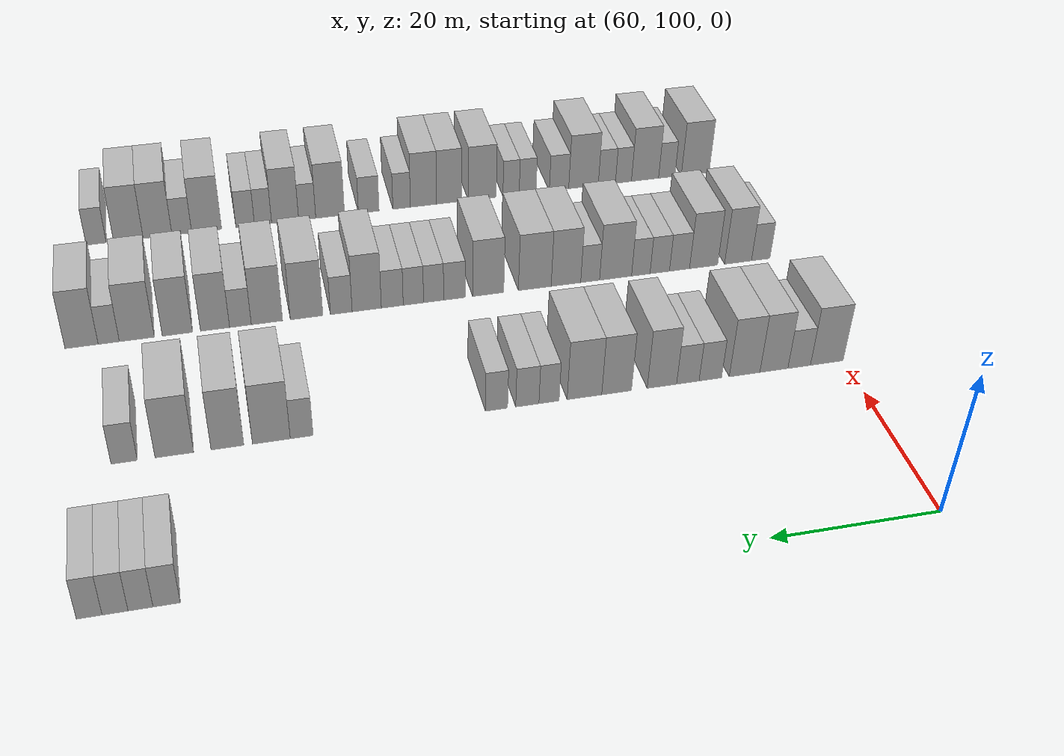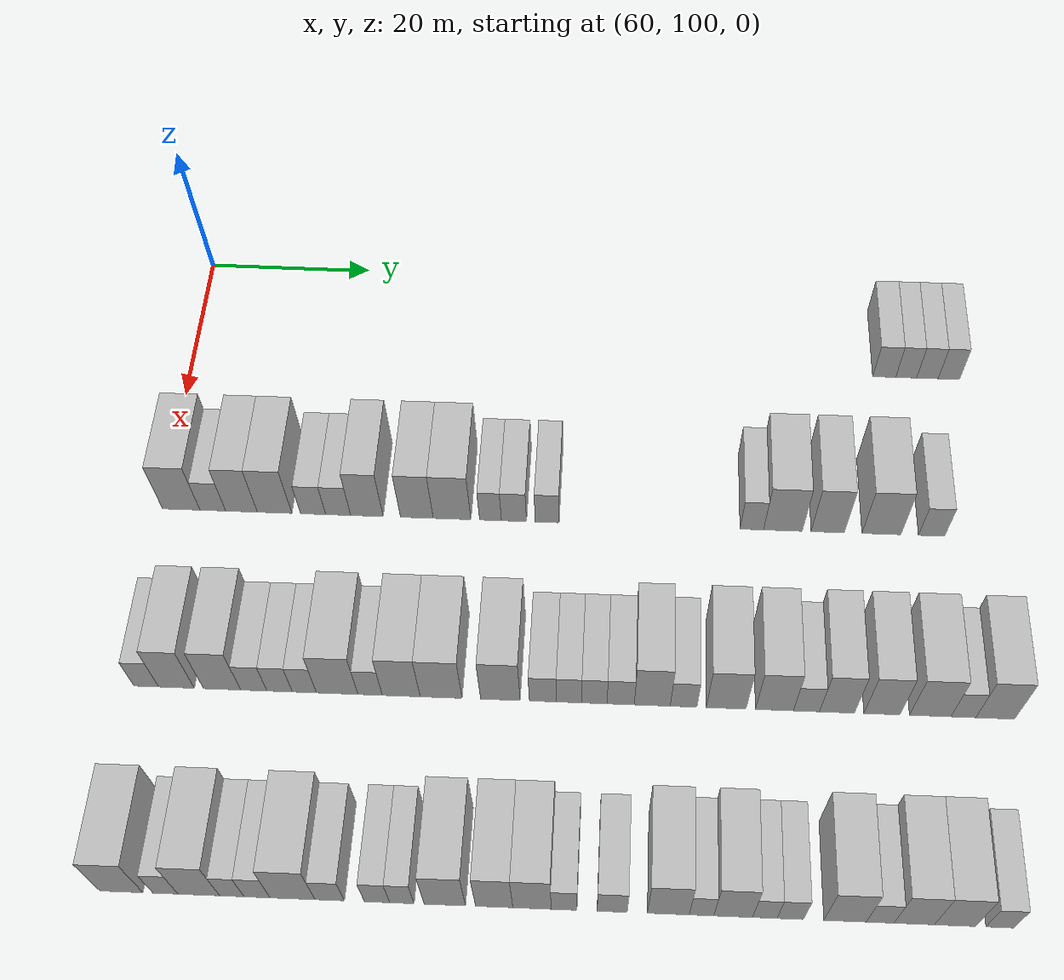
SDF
<sdf version="1.6">
 <world name="default">
  <model name="building_513">
   <static>1</static>
   <pose>69.0000 184.5272 0 0.000000 0.000000 0.000000</pose>
   <link name="link">
    <pose>0 0 3.00 0 0 0</pose>
    <collision name="collision"><geometry><box><size>10.0000 2.7876 6.0000</size></box></geometry></collision>
    <visual name="visual">
     <cast_shadows>0</cast_shadows>
     <geometry><box><size>10.0000 2.7876 6.0000</size></box></geometry>
     <material>
      <script>
       <uri>model://HANNAS_wall/materials/scripts</uri>
       <uri>model://HANNAS_wall/materials/textures</uri>
       <name>vrc/HANNAS_wall</name>
      </script>
     </material>
    </visual>
   </link>
  </model>
  <model name="building_514">
   <static>1</static>
   <pose>69.0000 187.1919 0 0.000000 0.000000 0.000000</pose>
   <link name="link">
    <pose>0 0 3.00 0 0 0</pose>
    <collision name="collision"><geometry><box><size>10.0000 2.5418 6.0000</size></box></geometry></collision>
    <visual name="visual">
     <cast_shadows>0</cast_shadows>
     <geometry><box><size>10.0000 2.5418 6.0000</size></box></geometry>
     <material>
      <script>
       <uri>model://HANNAS_wall/materials/scripts</uri>
       <uri>model://HANNAS_wall/materials/textures</uri>
       <name>vrc/HANNAS_wall</name>
      </script>
     </material>
    </visual>
   </link>
  </model>
  <model name="building_515">
   <static>1</static>
   <pose>69.0000 189.7736 0 0.000000 0.000000 0.000000</pose>
   <link name="link">
    <pose>0 0 3.00 0 0 0</pose>
    <collision name="collision"><geometry><box><size>10.0000 2.6215 6.0000</size></box></geometry></collision>
    <visual name="visual">
     <cast_shadows>0</cast_shadows>
     <geometry><box><size>10.0000 2.6215 6.0000</size></box></geometry>
     <material>
      <script>
       <uri>model://HANNAS_wall/materials/scripts</uri>
       <uri>model://HANNAS_wall/materials/textures</uri>
       <name>vrc/HANNAS_wall</name>
      </script>
     </material>
    </visual>
   </link>
  </model>
  <model name="building_516">
   <static>1</static>
   <pose>69.0000 192.3810 0 0.000000 0.000000 0.000000</pose>
   <link name="link">
    <pose>0 0 3.00 0 0 0</pose>
    <collision name="collision"><geometry><box><size>10.0000 2.5934 6.0000</size></box></geometry></collision>
    <visual name="visual">
     <cast_shadows>0</cast_shadows>
     <geometry><box><size>10.0000 2.5934 6.0000</size></box></geometry>
     <material>
      <script>
       <uri>model://HANNAS_wall/materials/scripts</uri>
       <uri>model://HANNAS_wall/materials/textures</uri>
       <name>vrc/HANNAS_wall</name>
      </script>
     </material>
    </visual>
   </link>
  </model>
  <model name="building_680">
   <static>1</static>
   <pose>91.0000 102.3181 0 0.000000 0.000000 0.000000</pose>
   <link name="link">
    <pose>0 0 4.50 0 0 0</pose>
    <collision name="collision"><geometry><box><size>10.0000 4.3328 9.0000</size></box></geometry></collision>
    <visual name="visual">
     <cast_shadows>0</cast_shadows>
     <geometry><box><size>10.0000 4.3328 9.0000</size></box></geometry>
     <material>
      <script>
       <uri>model://HANNAS_wall/materials/scripts</uri>
       <uri>model://HANNAS_wall/materials/textures</uri>
       <name>vrc/HANNAS_wall</name>
      </script>
     </material>
    </visual>
   </link>
  </model>
  <model name="building_681">
   <static>1</static>
   <pose>91.0000 105.9725 0 0.000000 0.000000 0.000000</pose>
   <link name="link">
    <pose>0 0 3.00 0 0 0</pose>
    <collision name="collision"><geometry><box><size>10.0000 2.9761 6.0000</size></box></geometry></collision>
    <visual name="visual">
     <cast_shadows>0</cast_shadows>
     <geometry><box><size>10.0000 2.9761 6.0000</size></box></geometry>
     <material>
      <script>
       <uri>model://HANNAS_wall/materials/scripts</uri>
       <uri>model://HANNAS_wall/materials/textures</uri>
       <name>vrc/HANNAS_wall</name>
      </script>
     </material>
    </visual>
   </link>
  </model>
  <model name="building_682">
   <static>1</static>
   <pose>91.0000 109.2943 0 0.000000 0.000000 0.000000</pose>
   <link name="link">
    <pose>0 0 4.50 0 0 0</pose>
    <collision name="collision"><geometry><box><size>10.0000 3.6674 9.0000</size></box></geometry></collision>
    <visual name="visual">
     <cast_shadows>0</cast_shadows>
     <geometry><box><size>10.0000 3.6674 9.0000</size></box></geometry>
     <material>
      <script>
       <uri>model://HANNAS_wall/materials/scripts</uri>
       <uri>model://HANNAS_wall/materials/textures</uri>
       <name>vrc/HANNAS_wall</name>
      </script>
     </material>
    </visual>
   </link>
  </model>
  <model name="building_683">
   <static>1</static>
   <pose>91.0000 113.1238 0 0.000000 0.000000 0.000000</pose>
   <link name="link">
    <pose>0 0 4.50 0 0 0</pose>
    <collision name="collision"><geometry><box><size>10.0000 3.9918 9.0000</size></box></geometry></collision>
    <visual name="visual">
     <cast_shadows>0</cast_shadows>
     <geometry><box><size>10.0000 3.9918 9.0000</size></box></geometry>
     <material>
      <script>
       <uri>model://HANNAS_wall/materials/scripts</uri>
       <uri>model://HANNAS_wall/materials/textures</uri>
       <name>vrc/HANNAS_wall</name>
      </script>
     </material>
    </visual>
   </link>
  </model>
  <model name="building_684">
   <static>1</static>
   <pose>91.0000 117.5703 0 0.000000 0.000000 0.000000</pose>
   <link name="link">
    <pose>0 0 3.00 0 0 0</pose>
    <collision name="collision"><geometry><box><size>10.0000 2.9012 6.0000</size></box></geometry></collision>
    <visual name="visual">
     <cast_shadows>0</cast_shadows>
     <geometry><box><size>10.0000 2.9012 6.0000</size></box></geometry>
     <material>
      <script>
       <uri>model://HANNAS_wall/materials/scripts</uri>
       <uri>model://HANNAS_wall/materials/textures</uri>
       <name>vrc/HANNAS_wall</name>
      </script>
     </material>
    </visual>
   </link>
  </model>
  <model name="building_685">
   <static>1</static>
   <pose>91.0000 120.4655 0 0.000000 0.000000 0.000000</pose>
   <link name="link">
    <pose>0 0 3.00 0 0 0</pose>
    <collision name="collision"><geometry><box><size>10.0000 2.8893 6.0000</size></box></geometry></collision>
    <visual name="visual">
     <cast_shadows>0</cast_shadows>
     <geometry><box><size>10.0000 2.8893 6.0000</size></box></geometry>
     <material>
      <script>
       <uri>model://HANNAS_wall/materials/scripts</uri>
       <uri>model://HANNAS_wall/materials/textures</uri>
       <name>vrc/HANNAS_wall</name>
      </script>
     </material>
    </visual>
   </link>
  </model>
  <model name="building_686">
   <static>1</static>
   <pose>91.0000 123.7858 0 0.000000 0.000000 0.000000</pose>
   <link name="link">
    <pose>0 0 4.50 0 0 0</pose>
    <collision name="collision"><geometry><box><size>10.0000 3.7511 9.0000</size></box></geometry></collision>
    <visual name="visual">
     <cast_shadows>0</cast_shadows>
     <geometry><box><size>10.0000 3.7511 9.0000</size></box></geometry>
     <material>
      <script>
       <uri>model://HANNAS_wall/materials/scripts</uri>
       <uri>model://HANNAS_wall/materials/textures</uri>
       <name>vrc/HANNAS_wall</name>
      </script>
     </material>
    </visual>
   </link>
  </model>
  <model name="building_687">
   <static>1</static>
   <pose>91.0000 129.5402 0 0.000000 0.000000 0.000000</pose>
   <link name="link">
    <pose>0 0 4.50 0 0 0</pose>
    <collision name="collision"><geometry><box><size>10.0000 3.7578 9.0000</size></box></geometry></collision>
    <visual name="visual">
     <cast_shadows>0</cast_shadows>
     <geometry><box><size>10.0000 3.7578 9.0000</size></box></geometry>
     <material>
      <script>
       <uri>model://HANNAS_wall/materials/scripts</uri>
       <uri>model://HANNAS_wall/materials/textures</uri>
       <name>vrc/HANNAS_wall</name>
      </script>
     </material>
    </visual>
   </link>
  </model>
  <model name="building_688">
   <static>1</static>
   <pose>91.0000 133.5899 0 0.000000 0.000000 0.000000</pose>
   <link name="link">
    <pose>0 0 4.50 0 0 0</pose>
    <collision name="collision"><geometry><box><size>10.0000 4.3416 9.0000</size></box></geometry></collision>
    <visual name="visual">
     <cast_shadows>0</cast_shadows>
     <geometry><box><size>10.0000 4.3416 9.0000</size></box></geometry>
     <material>
      <script>
       <uri>model://HANNAS_wall/materials/scripts</uri>
       <uri>model://HANNAS_wall/materials/textures</uri>
       <name>vrc/HANNAS_wall</name>
      </script>
     </material>
    </visual>
   </link>
  </model>
  <model name="building_689">
   <static>1</static>
   <pose>91.0000 138.0135 0 0.000000 0.000000 0.000000</pose>
   <link name="link">
    <pose>0 0 3.00 0 0 0</pose>
    <collision name="collision"><geometry><box><size>10.0000 2.5056 6.0000</size></box></geometry></collision>
    <visual name="visual">
     <cast_shadows>0</cast_shadows>
     <geometry><box><size>10.0000 2.5056 6.0000</size></box></geometry>
     <material>
      <script>
       <uri>model://HANNAS_wall/materials/scripts</uri>
       <uri>model://HANNAS_wall/materials/textures</uri>
       <name>vrc/HANNAS_wall</name>
      </script>
     </material>
    </visual>
   </link>
  </model>
  <model name="building_690">
   <static>1</static>
   <pose>91.0000 140.7064 0 0.000000 0.000000 0.000000</pose>
   <link name="link">
    <pose>0 0 3.00 0 0 0</pose>
    <collision name="collision"><geometry><box><size>10.0000 2.8801 6.0000</size></box></geometry></collision>
    <visual name="visual">
     <cast_shadows>0</cast_shadows>
     <geometry><box><size>10.0000 2.8801 6.0000</size></box></geometry>
     <material>
      <script>
       <uri>model://HANNAS_wall/materials/scripts</uri>
       <uri>model://HANNAS_wall/materials/textures</uri>
       <name>vrc/HANNAS_wall</name>
      </script>
     </material>
    </visual>
   </link>
  </model>
  <model name="building_691">
   <static>1</static>
   <pose>91.0000 144.5167 0 0.000000 0.000000 0.000000</pose>
   <link name="link">
    <pose>0 0 3.00 0 0 0</pose>
    <collision name="collision"><geometry><box><size>10.0000 2.7405 6.0000</size></box></geometry></collision>
    <visual name="visual">
     <cast_shadows>0</cast_shadows>
     <geometry><box><size>10.0000 2.7405 6.0000</size></box></geometry>
     <material>
      <script>
       <uri>model://HANNAS_wall/materials/scripts</uri>
       <uri>model://HANNAS_wall/materials/textures</uri>
       <name>vrc/HANNAS_wall</name>
      </script>
     </material>
    </visual>
   </link>
  </model>
  <model name="building_692">
   <static>1</static>
   <pose>91.0000 167.9184 0 0.000000 0.000000 0.000000</pose>
   <link name="link">
    <pose>0 0 3.00 0 0 0</pose>
    <collision name="collision"><geometry><box><size>10.0000 2.6877 6.0000</size></box></geometry></collision>
    <visual name="visual">
     <cast_shadows>0</cast_shadows>
     <geometry><box><size>10.0000 2.6877 6.0000</size></box></geometry>
     <material>
      <script>
       <uri>model://HANNAS_wall/materials/scripts</uri>
       <uri>model://HANNAS_wall/materials/textures</uri>
       <name>vrc/HANNAS_wall</name>
      </script>
     </material>
    </visual>
   </link>
  </model>
  <model name="building_693">
   <static>1</static>
   <pose>91.0000 171.4706 0 0.000000 0.000000 0.000000</pose>
   <link name="link">
    <pose>0 0 4.50 0 0 0</pose>
    <collision name="collision"><geometry><box><size>10.0000 4.4167 9.0000</size></box></geometry></collision>
    <visual name="visual">
     <cast_shadows>0</cast_shadows>
     <geometry><box><size>10.0000 4.4167 9.0000</size></box></geometry>
     <material>
      <script>
       <uri>model://HANNAS_wall/materials/scripts</uri>
       <uri>model://HANNAS_wall/materials/textures</uri>
       <name>vrc/HANNAS_wall</name>
      </script>
     </material>
    </visual>
   </link>
  </model>
  <model name="building_694">
   <static>1</static>
   <pose>91.0000 176.5769 0 0.000000 0.000000 0.000000</pose>
   <link name="link">
    <pose>0 0 4.50 0 0 0</pose>
    <collision name="collision"><geometry><box><size>10.0000 3.7958 9.0000</size></box></geometry></collision>
    <visual name="visual">
     <cast_shadows>0</cast_shadows>
     <geometry><box><size>10.0000 3.7958 9.0000</size></box></geometry>
     <material>
      <script>
       <uri>model://HANNAS_wall/materials/scripts</uri>
       <uri>model://HANNAS_wall/materials/textures</uri>
       <name>vrc/HANNAS_wall</name>
      </script>
     </material>
    </visual>
   </link>
  </model>
  <model name="building_695">
   <static>1</static>
   <pose>91.0000 182.6849 0 0.000000 0.000000 0.000000</pose>
   <link name="link">
    <pose>0 0 4.50 0 0 0</pose>
    <collision name="collision"><geometry><box><size>10.0000 4.4202 9.0000</size></box></geometry></collision>
    <visual name="visual">
     <cast_shadows>0</cast_shadows>
     <geometry><box><size>10.0000 4.4202 9.0000</size></box></geometry>
     <material>
      <script>
       <uri>model://HANNAS_wall/materials/scripts</uri>
       <uri>model://HANNAS_wall/materials/textures</uri>
       <name>vrc/HANNAS_wall</name>
      </script>
     </material>
    </visual>
   </link>
  </model>
  <model name="building_696">
   <static>1</static>
   <pose>91.0000 188.3859 0 0.000000 0.000000 0.000000</pose>
   <link name="link">
    <pose>0 0 3.00 0 0 0</pose>
    <collision name="collision"><geometry><box><size>10.0000 2.9819 6.0000</size></box></geometry></collision>
    <visual name="visual">
     <cast_shadows>0</cast_shadows>
     <geometry><box><size>10.0000 2.9819 6.0000</size></box></geometry>
     <material>
      <script>
       <uri>model://HANNAS_wall/materials/scripts</uri>
       <uri>model://HANNAS_wall/materials/textures</uri>
       <name>vrc/HANNAS_wall</name>
      </script>
     </material>
    </visual>
   </link>
  </model>
  <model name="building_853">
   <static>1</static>
   <pose>113.0000 102.5112 0 0.000000 0.000000 0.000000</pose>
   <link name="link">
    <pose>0 0 3.00 0 0 0</pose>
    <collision name="collision"><geometry><box><size>10.0000 2.6646 6.0000</size></box></geometry></collision>
    <visual name="visual">
     <cast_shadows>0</cast_shadows>
     <geometry><box><size>10.0000 2.6646 6.0000</size></box></geometry>
     <material>
      <script>
       <uri>model://HANNAS_wall/materials/scripts</uri>
       <uri>model://HANNAS_wall/materials/textures</uri>
       <name>vrc/HANNAS_wall</name>
      </script>
     </material>
    </visual>
   </link>
  </model>
  <model name="building_854">
   <static>1</static>
   <pose>113.0000 105.7718 0 0.000000 0.000000 0.000000</pose>
   <link name="link">
    <pose>0 0 4.50 0 0 0</pose>
    <collision name="collision"><geometry><box><size>10.0000 3.8566 9.0000</size></box></geometry></collision>
    <visual name="visual">
     <cast_shadows>0</cast_shadows>
     <geometry><box><size>10.0000 3.8566 9.0000</size></box></geometry>
     <material>
      <script>
       <uri>model://HANNAS_wall/materials/scripts</uri>
       <uri>model://HANNAS_wall/materials/textures</uri>
       <name>vrc/HANNAS_wall</name>
      </script>
     </material>
    </visual>
   </link>
  </model>
  <model name="building_855">
   <static>1</static>
   <pose>113.0000 110.6985 0 0.000000 0.000000 0.000000</pose>
   <link name="link">
    <pose>0 0 4.50 0 0 0</pose>
    <collision name="collision"><geometry><box><size>10.0000 3.9968 9.0000</size></box></geometry></collision>
    <visual name="visual">
     <cast_shadows>0</cast_shadows>
     <geometry><box><size>10.0000 3.9968 9.0000</size></box></geometry>
     <material>
      <script>
       <uri>model://HANNAS_wall/materials/scripts</uri>
       <uri>model://HANNAS_wall/materials/textures</uri>
       <name>vrc/HANNAS_wall</name>
      </script>
     </material>
    </visual>
   </link>
  </model>
  <model name="building_856">
   <static>1</static>
   <pose>113.0000 114.1185 0 0.000000 0.000000 0.000000</pose>
   <link name="link">
    <pose>0 0 3.00 0 0 0</pose>
    <collision name="collision"><geometry><box><size>10.0000 2.8432 6.0000</size></box></geometry></collision>
    <visual name="visual">
     <cast_shadows>0</cast_shadows>
     <geometry><box><size>10.0000 2.8432 6.0000</size></box></geometry>
     <material>
      <script>
       <uri>model://HANNAS_wall/materials/scripts</uri>
       <uri>model://HANNAS_wall/materials/textures</uri>
       <name>vrc/HANNAS_wall</name>
      </script>
     </material>
    </visual>
   </link>
  </model>
  <model name="building_857">
   <static>1</static>
   <pose>113.0000 116.9082 0 0.000000 0.000000 0.000000</pose>
   <link name="link">
    <pose>0 0 3.00 0 0 0</pose>
    <collision name="collision"><geometry><box><size>10.0000 2.7363 6.0000</size></box></geometry></collision>
    <visual name="visual">
     <cast_shadows>0</cast_shadows>
     <geometry><box><size>10.0000 2.7363 6.0000</size></box></geometry>
     <material>
      <script>
       <uri>model://HANNAS_wall/materials/scripts</uri>
       <uri>model://HANNAS_wall/materials/textures</uri>
       <name>vrc/HANNAS_wall</name>
      </script>
     </material>
    </visual>
   </link>
  </model>
  <model name="building_858">
   <static>1</static>
   <pose>113.0000 119.5735 0 0.000000 0.000000 0.000000</pose>
   <link name="link">
    <pose>0 0 3.00 0 0 0</pose>
    <collision name="collision"><geometry><box><size>10.0000 2.5942 6.0000</size></box></geometry></collision>
    <visual name="visual">
     <cast_shadows>0</cast_shadows>
     <geometry><box><size>10.0000 2.5942 6.0000</size></box></geometry>
     <material>
      <script>
       <uri>model://HANNAS_wall/materials/scripts</uri>
       <uri>model://HANNAS_wall/materials/textures</uri>
       <name>vrc/HANNAS_wall</name>
      </script>
     </material>
    </visual>
   </link>
  </model>
  <model name="building_859">
   <static>1</static>
   <pose>113.0000 123.1020 0 0.000000 0.000000 0.000000</pose>
   <link name="link">
    <pose>0 0 4.50 0 0 0</pose>
    <collision name="collision"><geometry><box><size>10.0000 4.4627 9.0000</size></box></geometry></collision>
    <visual name="visual">
     <cast_shadows>0</cast_shadows>
     <geometry><box><size>10.0000 4.4627 9.0000</size></box></geometry>
     <material>
      <script>
       <uri>model://HANNAS_wall/materials/scripts</uri>
       <uri>model://HANNAS_wall/materials/textures</uri>
       <name>vrc/HANNAS_wall</name>
      </script>
     </material>
    </visual>
   </link>
  </model>
  <model name="building_860">
   <static>1</static>
   <pose>113.0000 126.6401 0 0.000000 0.000000 0.000000</pose>
   <link name="link">
    <pose>0 0 3.00 0 0 0</pose>
    <collision name="collision"><geometry><box><size>10.0000 2.6136 6.0000</size></box></geometry></collision>
    <visual name="visual">
     <cast_shadows>0</cast_shadows>
     <geometry><box><size>10.0000 2.6136 6.0000</size></box></geometry>
     <material>
      <script>
       <uri>model://HANNAS_wall/materials/scripts</uri>
       <uri>model://HANNAS_wall/materials/textures</uri>
       <name>vrc/HANNAS_wall</name>
      </script>
     </material>
    </visual>
   </link>
  </model>
  <model name="building_861">
   <static>1</static>
   <pose>113.0000 129.9814 0 0.000000 0.000000 0.000000</pose>
   <link name="link">
    <pose>0 0 4.50 0 0 0</pose>
    <collision name="collision"><geometry><box><size>10.0000 4.0688 9.0000</size></box></geometry></collision>
    <visual name="visual">
     <cast_shadows>0</cast_shadows>
     <geometry><box><size>10.0000 4.0688 9.0000</size></box></geometry>
     <material>
      <script>
       <uri>model://HANNAS_wall/materials/scripts</uri>
       <uri>model://HANNAS_wall/materials/textures</uri>
       <name>vrc/HANNAS_wall</name>
      </script>
     </material>
    </visual>
   </link>
  </model>
  <model name="building_862">
   <static>1</static>
   <pose>113.0000 134.2584 0 0.000000 0.000000 0.000000</pose>
   <link name="link">
    <pose>0 0 4.50 0 0 0</pose>
    <collision name="collision"><geometry><box><size>10.0000 4.4852 9.0000</size></box></geometry></collision>
    <visual name="visual">
     <cast_shadows>0</cast_shadows>
     <geometry><box><size>10.0000 4.4852 9.0000</size></box></geometry>
     <material>
      <script>
       <uri>model://HANNAS_wall/materials/scripts</uri>
       <uri>model://HANNAS_wall/materials/textures</uri>
       <name>vrc/HANNAS_wall</name>
      </script>
     </material>
    </visual>
   </link>
  </model>
  <model name="building_863">
   <static>1</static>
   <pose>113.0000 140.6112 0 0.000000 0.000000 0.000000</pose>
   <link name="link">
    <pose>0 0 4.50 0 0 0</pose>
    <collision name="collision"><geometry><box><size>10.0000 4.2204 9.0000</size></box></geometry></collision>
    <visual name="visual">
     <cast_shadows>0</cast_shadows>
     <geometry><box><size>10.0000 4.2204 9.0000</size></box></geometry>
     <material>
      <script>
       <uri>model://HANNAS_wall/materials/scripts</uri>
       <uri>model://HANNAS_wall/materials/textures</uri>
       <name>vrc/HANNAS_wall</name>
      </script>
     </material>
    </visual>
   </link>
  </model>
  <model name="building_864">
   <static>1</static>
   <pose>113.0000 145.1688 0 0.000000 0.000000 0.000000</pose>
   <link name="link">
    <pose>0 0 3.00 0 0 0</pose>
    <collision name="collision"><geometry><box><size>10.0000 2.8947 6.0000</size></box></geometry></collision>
    <visual name="visual">
     <cast_shadows>0</cast_shadows>
     <geometry><box><size>10.0000 2.8947 6.0000</size></box></geometry>
     <material>
      <script>
       <uri>model://HANNAS_wall/materials/scripts</uri>
       <uri>model://HANNAS_wall/materials/textures</uri>
       <name>vrc/HANNAS_wall</name>
      </script>
     </material>
    </visual>
   </link>
  </model>
  <model name="building_865">
   <static>1</static>
   <pose>113.0000 147.9570 0 0.000000 0.000000 0.000000</pose>
   <link name="link">
    <pose>0 0 3.00 0 0 0</pose>
    <collision name="collision"><geometry><box><size>10.0000 2.6817 6.0000</size></box></geometry></collision>
    <visual name="visual">
     <cast_shadows>0</cast_shadows>
     <geometry><box><size>10.0000 2.6817 6.0000</size></box></geometry>
     <material>
      <script>
       <uri>model://HANNAS_wall/materials/scripts</uri>
       <uri>model://HANNAS_wall/materials/textures</uri>
       <name>vrc/HANNAS_wall</name>
      </script>
     </material>
    </visual>
   </link>
  </model>
  <model name="building_866">
   <static>1</static>
   <pose>113.0000 150.6489 0 0.000000 0.000000 0.000000</pose>
   <link name="link">
    <pose>0 0 3.00 0 0 0</pose>
    <collision name="collision"><geometry><box><size>10.0000 2.7021 6.0000</size></box></geometry></collision>
    <visual name="visual">
     <cast_shadows>0</cast_shadows>
     <geometry><box><size>10.0000 2.7021 6.0000</size></box></geometry>
     <material>
      <script>
       <uri>model://HANNAS_wall/materials/scripts</uri>
       <uri>model://HANNAS_wall/materials/textures</uri>
       <name>vrc/HANNAS_wall</name>
      </script>
     </material>
    </visual>
   </link>
  </model>
  <model name="building_867">
   <static>1</static>
   <pose>113.0000 153.4493 0 0.000000 0.000000 0.000000</pose>
   <link name="link">
    <pose>0 0 3.00 0 0 0</pose>
    <collision name="collision"><geometry><box><size>10.0000 2.8987 6.0000</size></box></geometry></collision>
    <visual name="visual">
     <cast_shadows>0</cast_shadows>
     <geometry><box><size>10.0000 2.8987 6.0000</size></box></geometry>
     <material>
      <script>
       <uri>model://HANNAS_wall/materials/scripts</uri>
       <uri>model://HANNAS_wall/materials/textures</uri>
       <name>vrc/HANNAS_wall</name>
      </script>
     </material>
    </visual>
   </link>
  </model>
  <model name="building_868">
   <static>1</static>
   <pose>113.0000 156.8186 0 0.000000 0.000000 0.000000</pose>
   <link name="link">
    <pose>0 0 4.50 0 0 0</pose>
    <collision name="collision"><geometry><box><size>10.0000 3.8399 9.0000</size></box></geometry></collision>
    <visual name="visual">
     <cast_shadows>0</cast_shadows>
     <geometry><box><size>10.0000 3.8399 9.0000</size></box></geometry>
     <material>
      <script>
       <uri>model://HANNAS_wall/materials/scripts</uri>
       <uri>model://HANNAS_wall/materials/textures</uri>
       <name>vrc/HANNAS_wall</name>
      </script>
     </material>
    </visual>
   </link>
  </model>
  <model name="building_869">
   <static>1</static>
   <pose>113.0000 160.1595 0 0.000000 0.000000 0.000000</pose>
   <link name="link">
    <pose>0 0 3.00 0 0 0</pose>
    <collision name="collision"><geometry><box><size>10.0000 2.8419 6.0000</size></box></geometry></collision>
    <visual name="visual">
     <cast_shadows>0</cast_shadows>
     <geometry><box><size>10.0000 2.8419 6.0000</size></box></geometry>
     <material>
      <script>
       <uri>model://HANNAS_wall/materials/scripts</uri>
       <uri>model://HANNAS_wall/materials/textures</uri>
       <name>vrc/HANNAS_wall</name>
      </script>
     </material>
    </visual>
   </link>
  </model>
  <model name="building_870">
   <static>1</static>
   <pose>113.0000 164.6936 0 0.000000 0.000000 0.000000</pose>
   <link name="link">
    <pose>0 0 4.50 0 0 0</pose>
    <collision name="collision"><geometry><box><size>10.0000 4.2262 9.0000</size></box></geometry></collision>
    <visual name="visual">
     <cast_shadows>0</cast_shadows>
     <geometry><box><size>10.0000 4.2262 9.0000</size></box></geometry>
     <material>
      <script>
       <uri>model://HANNAS_wall/materials/scripts</uri>
       <uri>model://HANNAS_wall/materials/textures</uri>
       <name>vrc/HANNAS_wall</name>
      </script>
     </material>
    </visual>
   </link>
  </model>
  <model name="building_871">
   <static>1</static>
   <pose>113.0000 169.8213 0 0.000000 0.000000 0.000000</pose>
   <link name="link">
    <pose>0 0 4.50 0 0 0</pose>
    <collision name="collision"><geometry><box><size>10.0000 4.0292 9.0000</size></box></geometry></collision>
    <visual name="visual">
     <cast_shadows>0</cast_shadows>
     <geometry><box><size>10.0000 4.0292 9.0000</size></box></geometry>
     <material>
      <script>
       <uri>model://HANNAS_wall/materials/scripts</uri>
       <uri>model://HANNAS_wall/materials/textures</uri>
       <name>vrc/HANNAS_wall</name>
      </script>
     </material>
    </visual>
   </link>
  </model>
  <model name="building_872">
   <static>1</static>
   <pose>113.0000 173.2242 0 0.000000 0.000000 0.000000</pose>
   <link name="link">
    <pose>0 0 3.00 0 0 0</pose>
    <collision name="collision"><geometry><box><size>10.0000 2.7767 6.0000</size></box></geometry></collision>
    <visual name="visual">
     <cast_shadows>0</cast_shadows>
     <geometry><box><size>10.0000 2.7767 6.0000</size></box></geometry>
     <material>
      <script>
       <uri>model://HANNAS_wall/materials/scripts</uri>
       <uri>model://HANNAS_wall/materials/textures</uri>
       <name>vrc/HANNAS_wall</name>
      </script>
     </material>
    </visual>
   </link>
  </model>
  <model name="building_873">
   <static>1</static>
   <pose>113.0000 176.4665 0 0.000000 0.000000 0.000000</pose>
   <link name="link">
    <pose>0 0 4.50 0 0 0</pose>
    <collision name="collision"><geometry><box><size>10.0000 3.7081 9.0000</size></box></geometry></collision>
    <visual name="visual">
     <cast_shadows>0</cast_shadows>
     <geometry><box><size>10.0000 3.7081 9.0000</size></box></geometry>
     <material>
      <script>
       <uri>model://HANNAS_wall/materials/scripts</uri>
       <uri>model://HANNAS_wall/materials/textures</uri>
       <name>vrc/HANNAS_wall</name>
      </script>
     </material>
    </visual>
   </link>
  </model>
  <model name="building_874">
   <static>1</static>
   <pose>113.0000 181.2357 0 0.000000 0.000000 0.000000</pose>
   <link name="link">
    <pose>0 0 4.50 0 0 0</pose>
    <collision name="collision"><geometry><box><size>10.0000 3.8302 9.0000</size></box></geometry></collision>
    <visual name="visual">
     <cast_shadows>0</cast_shadows>
     <geometry><box><size>10.0000 3.8302 9.0000</size></box></geometry>
     <material>
      <script>
       <uri>model://HANNAS_wall/materials/scripts</uri>
       <uri>model://HANNAS_wall/materials/textures</uri>
       <name>vrc/HANNAS_wall</name>
      </script>
     </material>
    </visual>
   </link>
  </model>
  <model name="building_875">
   <static>1</static>
   <pose>113.0000 186.3422 0 0.000000 0.000000 0.000000</pose>
   <link name="link">
    <pose>0 0 4.50 0 0 0</pose>
    <collision name="collision"><geometry><box><size>10.0000 4.3827 9.0000</size></box></geometry></collision>
    <visual name="visual">
     <cast_shadows>0</cast_shadows>
     <geometry><box><size>10.0000 4.3827 9.0000</size></box></geometry>
     <material>
      <script>
       <uri>model://HANNAS_wall/materials/scripts</uri>
       <uri>model://HANNAS_wall/materials/textures</uri>
       <name>vrc/HANNAS_wall</name>
      </script>
     </material>
    </visual>
   </link>
  </model>
  <model name="building_876">
   <static>1</static>
   <pose>113.0000 189.8508 0 0.000000 0.000000 0.000000</pose>
   <link name="link">
    <pose>0 0 3.00 0 0 0</pose>
    <collision name="collision"><geometry><box><size>10.0000 2.6347 6.0000</size></box></geometry></collision>
    <visual name="visual">
     <cast_shadows>0</cast_shadows>
     <geometry><box><size>10.0000 2.6347 6.0000</size></box></geometry>
     <material>
      <script>
       <uri>model://HANNAS_wall/materials/scripts</uri>
       <uri>model://HANNAS_wall/materials/textures</uri>
       <name>vrc/HANNAS_wall</name>
      </script>
     </material>
    </visual>
   </link>
  </model>
  <model name="building_877">
   <static>1</static>
   <pose>113.0000 193.2212 0 0.000000 0.000000 0.000000</pose>
   <link name="link">
    <pose>0 0 4.50 0 0 0</pose>
    <collision name="collision"><geometry><box><size>10.0000 4.1061 9.0000</size></box></geometry></collision>
    <visual name="visual">
     <cast_shadows>0</cast_shadows>
     <geometry><box><size>10.0000 4.1061 9.0000</size></box></geometry>
     <material>
      <script>
       <uri>model://HANNAS_wall/materials/scripts</uri>
       <uri>model://HANNAS_wall/materials/textures</uri>
       <name>vrc/HANNAS_wall</name>
      </script>
     </material>
    </visual>
   </link>
  </model>
  <model name="building_1050">
   <static>1</static>
   <pose>135.0000 104.2641 0 0.000000 0.000000 0.000000</pose>
   <link name="link">
    <pose>0 0 4.50 0 0 0</pose>
    <collision name="collision"><geometry><box><size>10.0000 4.3257 9.0000</size></box></geometry></collision>
    <visual name="visual">
     <cast_shadows>0</cast_shadows>
     <geometry><box><size>10.0000 4.3257 9.0000</size></box></geometry>
     <material>
      <script>
       <uri>model://HANNAS_wall/materials/scripts</uri>
       <uri>model://HANNAS_wall/materials/textures</uri>
       <name>vrc/HANNAS_wall</name>
      </script>
     </material>
    </visual>
   </link>
  </model>
  <model name="building_1051">
   <static>1</static>
   <pose>135.0000 108.6815 0 0.000000 0.000000 0.000000</pose>
   <link name="link">
    <pose>0 0 3.00 0 0 0</pose>
    <collision name="collision"><geometry><box><size>10.0000 2.5091 6.0000</size></box></geometry></collision>
    <visual name="visual">
     <cast_shadows>0</cast_shadows>
     <geometry><box><size>10.0000 2.5091 6.0000</size></box></geometry>
     <material>
      <script>
       <uri>model://HANNAS_wall/materials/scripts</uri>
       <uri>model://HANNAS_wall/materials/textures</uri>
       <name>vrc/HANNAS_wall</name>
      </script>
     </material>
    </visual>
   </link>
  </model>
  <model name="building_1052">
   <static>1</static>
   <pose>135.0000 112.0216 0 0.000000 0.000000 0.000000</pose>
   <link name="link">
    <pose>0 0 4.50 0 0 0</pose>
    <collision name="collision"><geometry><box><size>10.0000 4.1709 9.0000</size></box></geometry></collision>
    <visual name="visual">
     <cast_shadows>0</cast_shadows>
     <geometry><box><size>10.0000 4.1709 9.0000</size></box></geometry>
     <material>
      <script>
       <uri>model://HANNAS_wall/materials/scripts</uri>
       <uri>model://HANNAS_wall/materials/textures</uri>
       <name>vrc/HANNAS_wall</name>
      </script>
     </material>
    </visual>
   </link>
  </model>
  <model name="building_1053">
   <static>1</static>
   <pose>135.0000 115.3295 0 0.000000 0.000000 0.000000</pose>
   <link name="link">
    <pose>0 0 3.00 0 0 0</pose>
    <collision name="collision"><geometry><box><size>10.0000 2.4449 6.0000</size></box></geometry></collision>
    <visual name="visual">
     <cast_shadows>0</cast_shadows>
     <geometry><box><size>10.0000 2.4449 6.0000</size></box></geometry>
     <material>
      <script>
       <uri>model://HANNAS_wall/materials/scripts</uri>
       <uri>model://HANNAS_wall/materials/textures</uri>
       <name>vrc/HANNAS_wall</name>
      </script>
     </material>
    </visual>
   </link>
  </model>
  <model name="building_1054">
   <static>1</static>
   <pose>135.0000 117.8588 0 0.000000 0.000000 0.000000</pose>
   <link name="link">
    <pose>0 0 3.00 0 0 0</pose>
    <collision name="collision"><geometry><box><size>10.0000 2.6136 6.0000</size></box></geometry></collision>
    <visual name="visual">
     <cast_shadows>0</cast_shadows>
     <geometry><box><size>10.0000 2.6136 6.0000</size></box></geometry>
     <material>
      <script>
       <uri>model://HANNAS_wall/materials/scripts</uri>
       <uri>model://HANNAS_wall/materials/textures</uri>
       <name>vrc/HANNAS_wall</name>
      </script>
     </material>
    </visual>
   </link>
  </model>
  <model name="building_1055">
   <static>1</static>
   <pose>135.0000 121.4053 0 0.000000 0.000000 0.000000</pose>
   <link name="link">
    <pose>0 0 4.50 0 0 0</pose>
    <collision name="collision"><geometry><box><size>10.0000 4.4795 9.0000</size></box></geometry></collision>
    <visual name="visual">
     <cast_shadows>0</cast_shadows>
     <geometry><box><size>10.0000 4.4795 9.0000</size></box></geometry>
     <material>
      <script>
       <uri>model://HANNAS_wall/materials/scripts</uri>
       <uri>model://HANNAS_wall/materials/textures</uri>
       <name>vrc/HANNAS_wall</name>
      </script>
     </material>
    </visual>
   </link>
  </model>
  <model name="building_1056">
   <static>1</static>
   <pose>135.0000 125.1032 0 0.000000 0.000000 0.000000</pose>
   <link name="link">
    <pose>0 0 3.00 0 0 0</pose>
    <collision name="collision"><geometry><box><size>10.0000 2.9163 6.0000</size></box></geometry></collision>
    <visual name="visual">
     <cast_shadows>0</cast_shadows>
     <geometry><box><size>10.0000 2.9163 6.0000</size></box></geometry>
     <material>
      <script>
       <uri>model://HANNAS_wall/materials/scripts</uri>
       <uri>model://HANNAS_wall/materials/textures</uri>
       <name>vrc/HANNAS_wall</name>
      </script>
     </material>
    </visual>
   </link>
  </model>
  <model name="building_1057">
   <static>1</static>
   <pose>135.0000 129.8213 0 0.000000 0.000000 0.000000</pose>
   <link name="link">
    <pose>0 0 3.00 0 0 0</pose>
    <collision name="collision"><geometry><box><size>10.0000 2.5198 6.0000</size></box></geometry></collision>
    <visual name="visual">
     <cast_shadows>0</cast_shadows>
     <geometry><box><size>10.0000 2.5198 6.0000</size></box></geometry>
     <material>
      <script>
       <uri>model://HANNAS_wall/materials/scripts</uri>
       <uri>model://HANNAS_wall/materials/textures</uri>
       <name>vrc/HANNAS_wall</name>
      </script>
     </material>
    </visual>
   </link>
  </model>
  <model name="building_1058">
   <static>1</static>
   <pose>135.0000 132.2913 0 0.000000 0.000000 0.000000</pose>
   <link name="link">
    <pose>0 0 3.00 0 0 0</pose>
    <collision name="collision"><geometry><box><size>10.0000 2.4202 6.0000</size></box></geometry></collision>
    <visual name="visual">
     <cast_shadows>0</cast_shadows>
     <geometry><box><size>10.0000 2.4202 6.0000</size></box></geometry>
     <material>
      <script>
       <uri>model://HANNAS_wall/materials/scripts</uri>
       <uri>model://HANNAS_wall/materials/textures</uri>
       <name>vrc/HANNAS_wall</name>
      </script>
     </material>
    </visual>
   </link>
  </model>
  <model name="building_1059">
   <static>1</static>
   <pose>135.0000 136.5587 0 0.000000 0.000000 0.000000</pose>
   <link name="link">
    <pose>0 0 4.50 0 0 0</pose>
    <collision name="collision"><geometry><box><size>10.0000 4.1144 9.0000</size></box></geometry></collision>
    <visual name="visual">
     <cast_shadows>0</cast_shadows>
     <geometry><box><size>10.0000 4.1144 9.0000</size></box></geometry>
     <material>
      <script>
       <uri>model://HANNAS_wall/materials/scripts</uri>
       <uri>model://HANNAS_wall/materials/textures</uri>
       <name>vrc/HANNAS_wall</name>
      </script>
     </material>
    </visual>
   </link>
  </model>
  <model name="building_1060">
   <static>1</static>
   <pose>135.0000 141.4585 0 0.000000 0.000000 0.000000</pose>
   <link name="link">
    <pose>0 0 4.50 0 0 0</pose>
    <collision name="collision"><geometry><box><size>10.0000 3.6852 9.0000</size></box></geometry></collision>
    <visual name="visual">
     <cast_shadows>0</cast_shadows>
     <geometry><box><size>10.0000 3.6852 9.0000</size></box></geometry>
     <material>
      <script>
       <uri>model://HANNAS_wall/materials/scripts</uri>
       <uri>model://HANNAS_wall/materials/textures</uri>
       <name>vrc/HANNAS_wall</name>
      </script>
     </material>
    </visual>
   </link>
  </model>
  <model name="building_1061">
   <static>1</static>
   <pose>135.0000 145.2021 0 0.000000 0.000000 0.000000</pose>
   <link name="link">
    <pose>0 0 4.50 0 0 0</pose>
    <collision name="collision"><geometry><box><size>10.0000 3.8021 9.0000</size></box></geometry></collision>
    <visual name="visual">
     <cast_shadows>0</cast_shadows>
     <geometry><box><size>10.0000 3.8021 9.0000</size></box></geometry>
     <material>
      <script>
       <uri>model://HANNAS_wall/materials/scripts</uri>
       <uri>model://HANNAS_wall/materials/textures</uri>
       <name>vrc/HANNAS_wall</name>
      </script>
     </material>
    </visual>
   </link>
  </model>
  <model name="building_1062">
   <static>1</static>
   <pose>135.0000 148.3777 0 0.000000 0.000000 0.000000</pose>
   <link name="link">
    <pose>0 0 3.00 0 0 0</pose>
    <collision name="collision"><geometry><box><size>10.0000 2.5491 6.0000</size></box></geometry></collision>
    <visual name="visual">
     <cast_shadows>0</cast_shadows>
     <geometry><box><size>10.0000 2.5491 6.0000</size></box></geometry>
     <material>
      <script>
       <uri>model://HANNAS_wall/materials/scripts</uri>
       <uri>model://HANNAS_wall/materials/textures</uri>
       <name>vrc/HANNAS_wall</name>
      </script>
     </material>
    </visual>
   </link>
  </model>
  <model name="building_1063">
   <static>1</static>
   <pose>135.0000 153.1387 0 0.000000 0.000000 0.000000</pose>
   <link name="link">
    <pose>0 0 3.00 0 0 0</pose>
    <collision name="collision"><geometry><box><size>10.0000 2.9730 6.0000</size></box></geometry></collision>
    <visual name="visual">
     <cast_shadows>0</cast_shadows>
     <geometry><box><size>10.0000 2.9730 6.0000</size></box></geometry>
     <material>
      <script>
       <uri>model://HANNAS_wall/materials/scripts</uri>
       <uri>model://HANNAS_wall/materials/textures</uri>
       <name>vrc/HANNAS_wall</name>
      </script>
     </material>
    </visual>
   </link>
  </model>
  <model name="building_1064">
   <static>1</static>
   <pose>135.0000 158.6834 0 0.000000 0.000000 0.000000</pose>
   <link name="link">
    <pose>0 0 4.50 0 0 0</pose>
    <collision name="collision"><geometry><box><size>10.0000 4.1163 9.0000</size></box></geometry></collision>
    <visual name="visual">
     <cast_shadows>0</cast_shadows>
     <geometry><box><size>10.0000 4.1163 9.0000</size></box></geometry>
     <material>
      <script>
       <uri>model://HANNAS_wall/materials/scripts</uri>
       <uri>model://HANNAS_wall/materials/textures</uri>
       <name>vrc/HANNAS_wall</name>
      </script>
     </material>
    </visual>
   </link>
  </model>
  <model name="building_1065">
   <static>1</static>
   <pose>135.0000 161.9544 0 0.000000 0.000000 0.000000</pose>
   <link name="link">
    <pose>0 0 3.00 0 0 0</pose>
    <collision name="collision"><geometry><box><size>10.0000 2.4257 6.0000</size></box></geometry></collision>
    <visual name="visual">
     <cast_shadows>0</cast_shadows>
     <geometry><box><size>10.0000 2.4257 6.0000</size></box></geometry>
     <material>
      <script>
       <uri>model://HANNAS_wall/materials/scripts</uri>
       <uri>model://HANNAS_wall/materials/textures</uri>
       <name>vrc/HANNAS_wall</name>
      </script>
     </material>
    </visual>
   </link>
  </model>
  <model name="building_1066">
   <static>1</static>
   <pose>135.0000 165.0780 0 0.000000 0.000000 0.000000</pose>
   <link name="link">
    <pose>0 0 4.50 0 0 0</pose>
    <collision name="collision"><geometry><box><size>10.0000 3.8213 9.0000</size></box></geometry></collision>
    <visual name="visual">
     <cast_shadows>0</cast_shadows>
     <geometry><box><size>10.0000 3.8213 9.0000</size></box></geometry>
     <material>
      <script>
       <uri>model://HANNAS_wall/materials/scripts</uri>
       <uri>model://HANNAS_wall/materials/textures</uri>
       <name>vrc/HANNAS_wall</name>
      </script>
     </material>
    </visual>
   </link>
  </model>
  <model name="building_1067">
   <static>1</static>
   <pose>135.0000 168.1947 0 0.000000 0.000000 0.000000</pose>
   <link name="link">
    <pose>0 0 3.00 0 0 0</pose>
    <collision name="collision"><geometry><box><size>10.0000 2.4121 6.0000</size></box></geometry></collision>
    <visual name="visual">
     <cast_shadows>0</cast_shadows>
     <geometry><box><size>10.0000 2.4121 6.0000</size></box></geometry>
     <material>
      <script>
       <uri>model://HANNAS_wall/materials/scripts</uri>
       <uri>model://HANNAS_wall/materials/textures</uri>
       <name>vrc/HANNAS_wall</name>
      </script>
     </material>
    </visual>
   </link>
  </model>
  <model name="building_1068">
   <static>1</static>
   <pose>135.0000 170.7046 0 0.000000 0.000000 0.000000</pose>
   <link name="link">
    <pose>0 0 3.00 0 0 0</pose>
    <collision name="collision"><geometry><box><size>10.0000 2.6076 6.0000</size></box></geometry></collision>
    <visual name="visual">
     <cast_shadows>0</cast_shadows>
     <geometry><box><size>10.0000 2.6076 6.0000</size></box></geometry>
     <material>
      <script>
       <uri>model://HANNAS_wall/materials/scripts</uri>
       <uri>model://HANNAS_wall/materials/textures</uri>
       <name>vrc/HANNAS_wall</name>
      </script>
     </material>
    </visual>
   </link>
  </model>
  <model name="building_1069">
   <static>1</static>
   <pose>135.0000 176.0909 0 0.000000 0.000000 0.000000</pose>
   <link name="link">
    <pose>0 0 4.50 0 0 0</pose>
    <collision name="collision"><geometry><box><size>10.0000 4.1650 9.0000</size></box></geometry></collision>
    <visual name="visual">
     <cast_shadows>0</cast_shadows>
     <geometry><box><size>10.0000 4.1650 9.0000</size></box></geometry>
     <material>
      <script>
       <uri>model://HANNAS_wall/materials/scripts</uri>
       <uri>model://HANNAS_wall/materials/textures</uri>
       <name>vrc/HANNAS_wall</name>
      </script>
     </material>
    </visual>
   </link>
  </model>
  <model name="building_1070">
   <static>1</static>
   <pose>135.0000 179.5370 0 0.000000 0.000000 0.000000</pose>
   <link name="link">
    <pose>0 0 3.00 0 0 0</pose>
    <collision name="collision"><geometry><box><size>10.0000 2.7272 6.0000</size></box></geometry></collision>
    <visual name="visual">
     <cast_shadows>0</cast_shadows>
     <geometry><box><size>10.0000 2.7272 6.0000</size></box></geometry>
     <material>
      <script>
       <uri>model://HANNAS_wall/materials/scripts</uri>
       <uri>model://HANNAS_wall/materials/textures</uri>
       <name>vrc/HANNAS_wall</name>
      </script>
     </material>
    </visual>
   </link>
  </model>
  <model name="building_1071">
   <static>1</static>
   <pose>135.0000 182.8865 0 0.000000 0.000000 0.000000</pose>
   <link name="link">
    <pose>0 0 4.50 0 0 0</pose>
    <collision name="collision"><geometry><box><size>10.0000 3.9718 9.0000</size></box></geometry></collision>
    <visual name="visual">
     <cast_shadows>0</cast_shadows>
     <geometry><box><size>10.0000 3.9718 9.0000</size></box></geometry>
     <material>
      <script>
       <uri>model://HANNAS_wall/materials/scripts</uri>
       <uri>model://HANNAS_wall/materials/textures</uri>
       <name>vrc/HANNAS_wall</name>
      </script>
     </material>
    </visual>
   </link>
  </model>
  <model name="building_1072">
   <static>1</static>
   <pose>135.0000 186.8939 0 0.000000 0.000000 0.000000</pose>
   <link name="link">
    <pose>0 0 4.50 0 0 0</pose>
    <collision name="collision"><geometry><box><size>10.0000 4.0429 9.0000</size></box></geometry></collision>
    <visual name="visual">
     <cast_shadows>0</cast_shadows>
     <geometry><box><size>10.0000 4.0429 9.0000</size></box></geometry>
     <material>
      <script>
       <uri>model://HANNAS_wall/materials/scripts</uri>
       <uri>model://HANNAS_wall/materials/textures</uri>
       <name>vrc/HANNAS_wall</name>
      </script>
     </material>
    </visual>
   </link>
  </model>
  <model name="building_1073">
   <static>1</static>
   <pose>135.0000 191.2857 0 0.000000 0.000000 0.000000</pose>
   <link name="link">
    <pose>0 0 3.00 0 0 0</pose>
    <collision name="collision"><geometry><box><size>10.0000 2.7407 6.0000</size></box></geometry></collision>
    <visual name="visual">
     <cast_shadows>0</cast_shadows>
     <geometry><box><size>10.0000 2.7407 6.0000</size></box></geometry>
     <material>
      <script>
       <uri>model://HANNAS_wall/materials/scripts</uri>
       <uri>model://HANNAS_wall/materials/textures</uri>
       <name>vrc/HANNAS_wall</name>
      </script>
     </material>
    </visual>
   </link>
  </model>
 </world>
</sdf>
